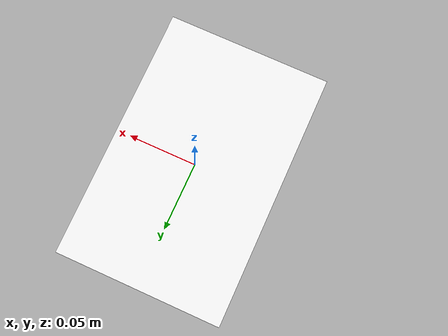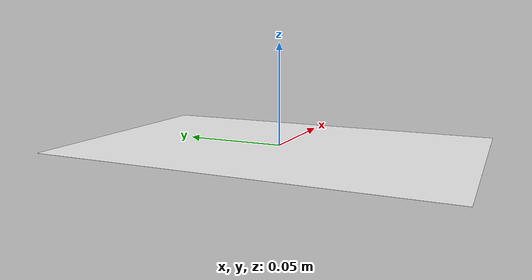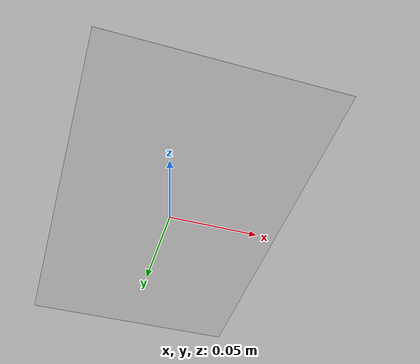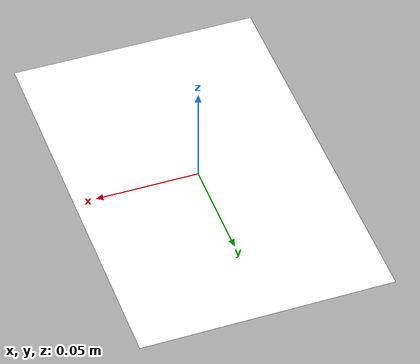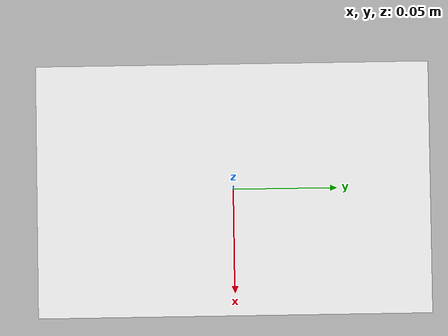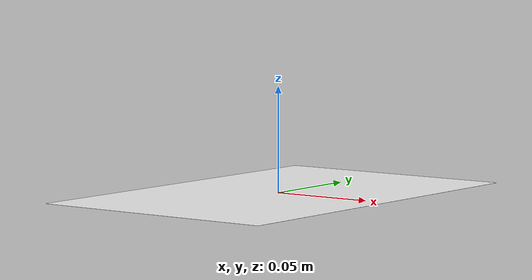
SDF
<?xml version='1.0'?>
<sdf version='1.5'>
  <model name='sign_residential'>

    <link name='sign'>
      <pose frame=''>0 0 0 0 0 0</pose>
      <visual name='visual'>
        <geometry>
          <box>
            <size>0.12171875 0.19 1e-5</size>
          </box>
        </geometry>
        <material>
          <script>
            <uri>model://sign_residential/materials/scripts</uri>
            <uri>model://sign_residential/materials/textures</uri>
            <name>sign_residential/sign</name>
          </script>
          <ambient>1 1 1 1</ambient>
          <diffuse>1 1 1 1</diffuse>
          <specular>0 0 0 1</specular>
          <emissive>1 1 1 0</emissive>
          <shader type='vertex'>
            <normal_map>__default__</normal_map>
          </shader>
        </material>
        <pose frame=''>0 0 0 0 -0 0</pose>
        <cast_shadows>1</cast_shadows>
        <transparency>0</transparency>
      </visual>
      <collision name='collision'>
        <laser_retro>0</laser_retro>
        <max_contacts>10</max_contacts>
        <pose frame=''>0 0 0 0 -0 0</pose>
        <geometry>
          <box>
            <size>0.12171875 0.19 1e-05</size>
          </box>
        </geometry>
      </collision>
    </link>

    <link name='sign_pad'>
      <pose frame='sign'>0 0 -1e-5 0 -0 0</pose>
      <visual name='visual'>
        <geometry>
          <box>
            <size>0.12171875 0.19 1e-5</size>
          </box>
        </geometry>
        <material>
          <script>
            <uri>model://sign_residential/materials/scripts</uri>
            <uri>model://sign_residential/materials/textures</uri>
            <name>sign_residential/empty</name>
          </script>
          <ambient>1 1 1 1</ambient>
          <diffuse>1 1 1 1</diffuse>
          <specular>0 0 0 1</specular>
          <emissive>1 1 1 0</emissive>
          <shader type='vertex'>
            <normal_map>__default__</normal_map>
          </shader>
        </material>
        <pose frame=''>0 0 0 0 -0 0</pose>
        <cast_shadows>1</cast_shadows>
        <transparency>0</transparency>
      </visual>
      <collision name='collision'>
        <laser_retro>0</laser_retro>
        <max_contacts>10</max_contacts>
        <pose frame=''>0 0 0 0 -0 0</pose>
        <geometry>
          <box>
            <size>0.12171875 0.19 1e-05</size>
          </box>
        </geometry>
      </collision>
    </link>

    <joint name='sign_JOINT_sign_pad' type='revolute'>
      <parent>sign</parent>
      <child>sign_pad</child>
      <pose frame=''>0 0 0 0 -0 0</pose>
      <axis>
        <xyz>0 0 1</xyz>
        <limit>
          <upper>0</upper>
          <lower>0</lower>
        </limit>
      </axis>
    </joint>

    <static>1</static>
    <allow_auto_disable>1</allow_auto_disable>

  </model>
</sdf>
